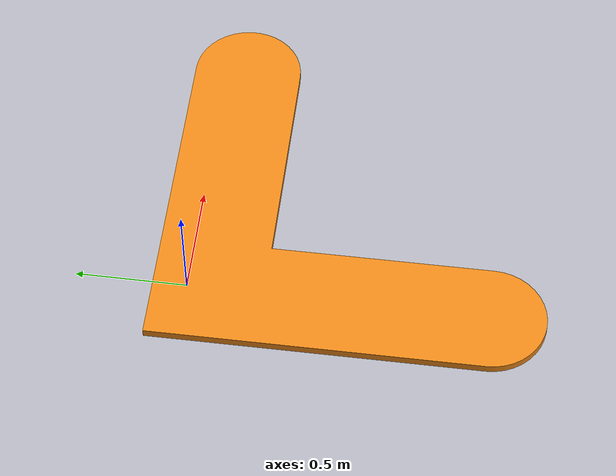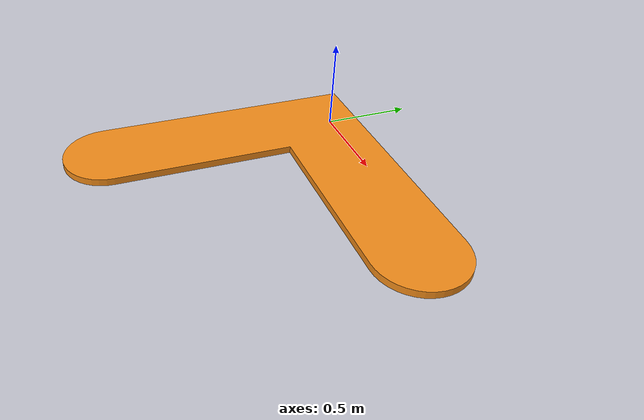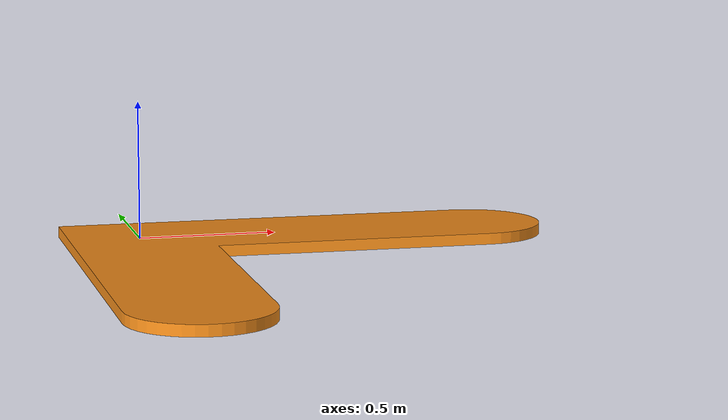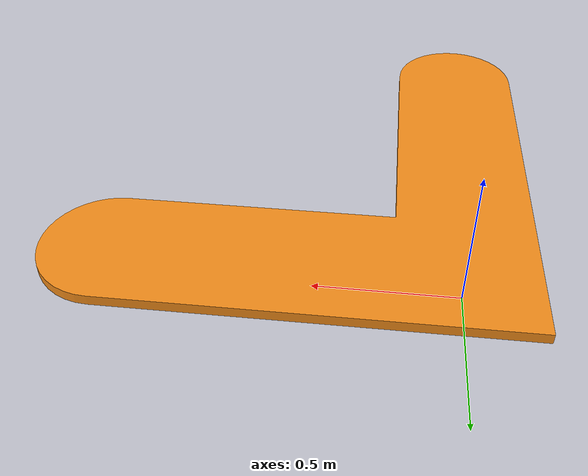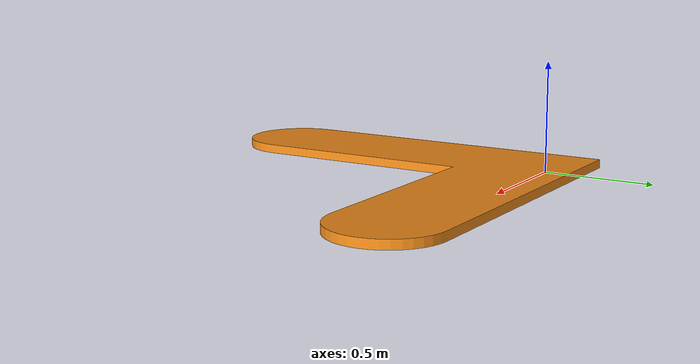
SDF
<?xml version="1.0" ?>
<sdf version="1.6">
  <model name="90deg">
    <static>true</static>
    <link name="link">
      <collision name="collision">
        <geometry>
          <mesh>
            <scale>0.001 0.001 0.001</scale>
            <uri>model://90deg/meshes/90deg.dae</uri>
          </mesh>
        </geometry>
      </collision>
      <visual name="visual">
        <geometry>
          <mesh>
            <scale>0.001 0.001 0.001</scale>
            <uri>model://90deg/meshes/90deg.dae</uri>
          </mesh>
        </geometry>
	<material>
	  <script>
            <uri>file://media/materials/scripts/gazebo.material</uri>
	    <name>Gazebo/Orange</name>
	  </script>
	</material>
      </visual>
    </link>
  </model>
</sdf>
